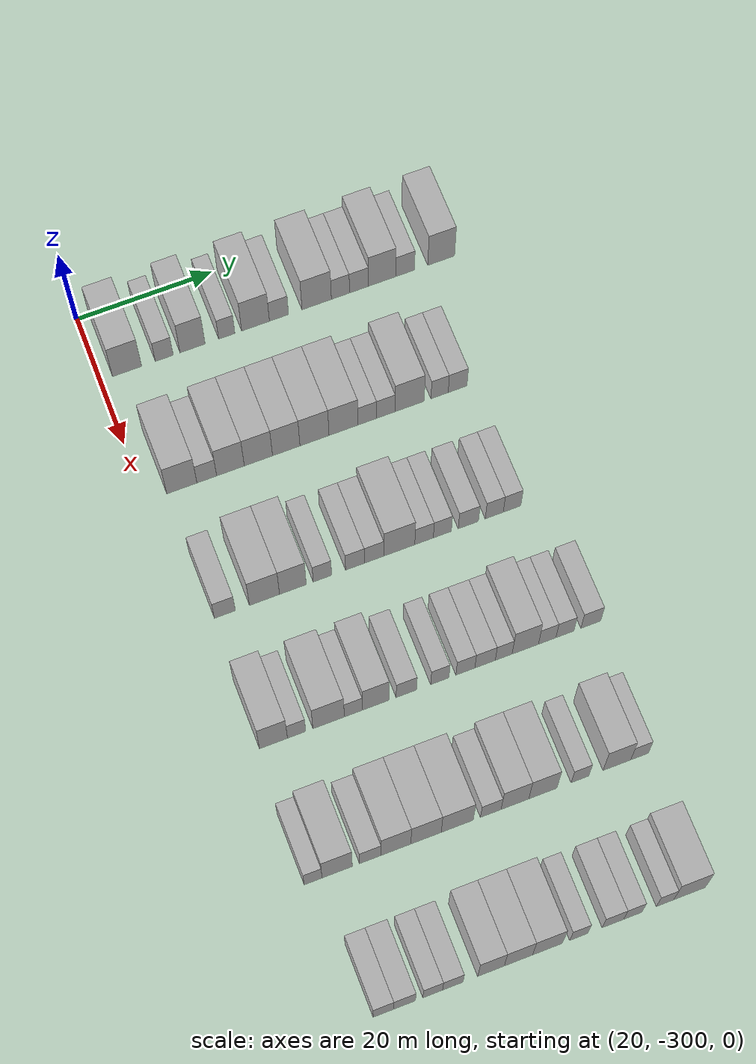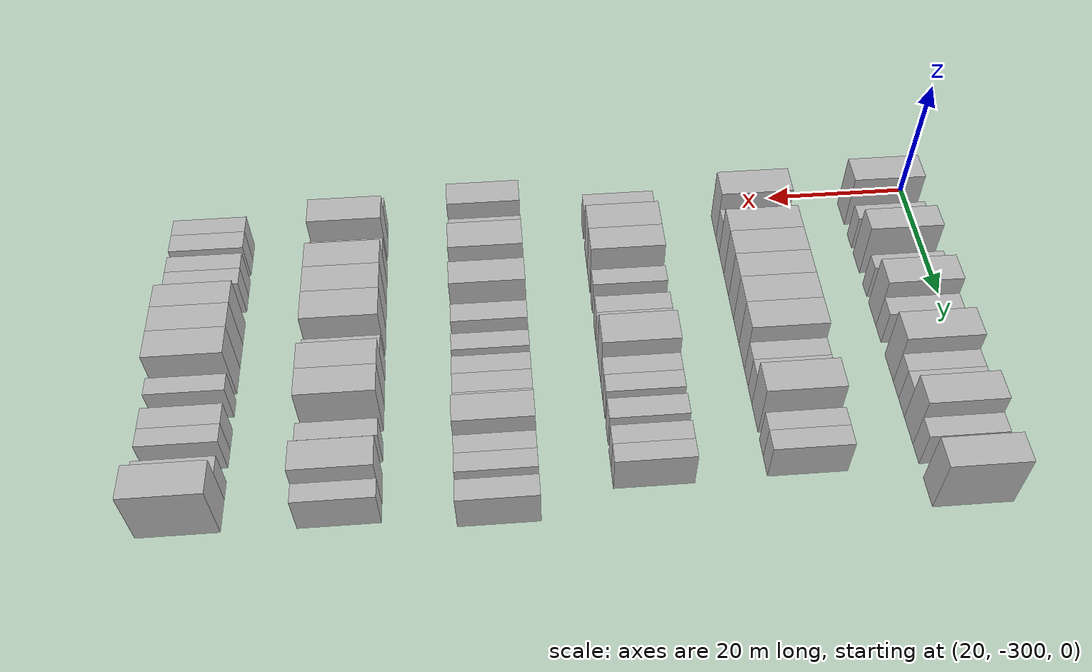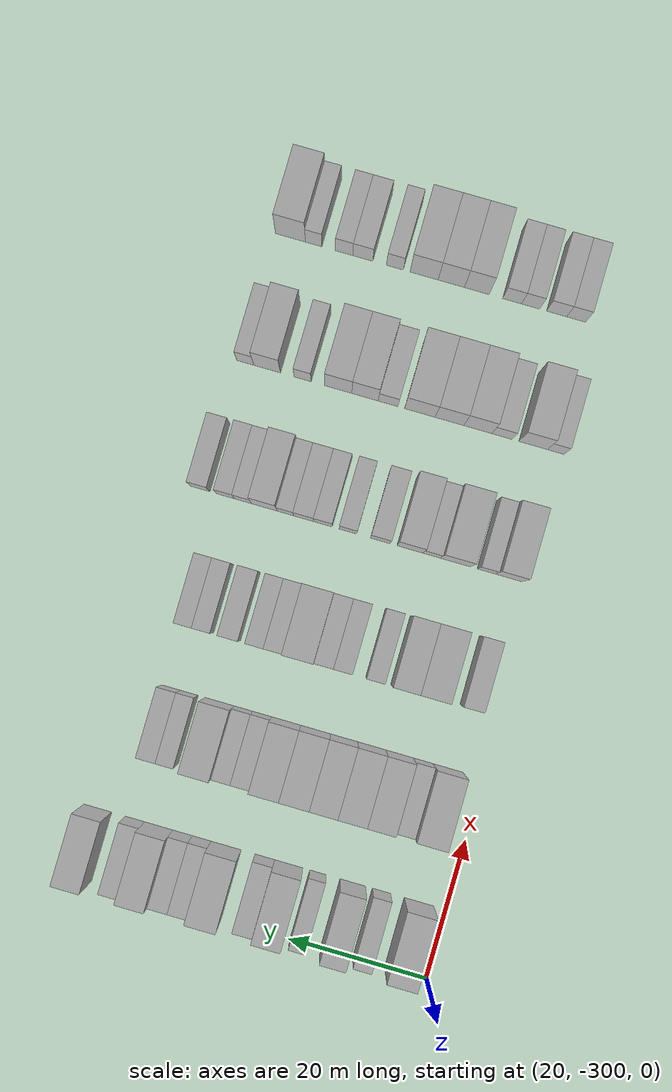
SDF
<sdf version="1.6">
 <world name="default">
  <model name="building_15">
   <static>1</static>
   <pose>25.0000 -296.0424 0 0.000000 0.000000 0.000000</pose>
   <link name="link">
    <pose>0 0 4.50 0 0 0</pose>
    <collision name="collision"><geometry><box><size>10.0000 4.2674 9.0000</size></box></geometry></collision>
    <visual name="visual">
     <cast_shadows>0</cast_shadows>
     <geometry><box><size>10.0000 4.2674 9.0000</size></box></geometry>
     <material>
      <script>
       <uri>model://HANNAS_wall/materials/scripts</uri>
       <uri>model://HANNAS_wall/materials/textures</uri>
       <name>vrc/HANNAS_wall</name>
      </script>
     </material>
    </visual>
   </link>
  </model>
  <model name="building_16">
   <static>1</static>
   <pose>25.0000 -290.5888 0 0.000000 0.000000 0.000000</pose>
   <link name="link">
    <pose>0 0 3.00 0 0 0</pose>
    <collision name="collision"><geometry><box><size>10.0000 2.6398 6.0000</size></box></geometry></collision>
    <visual name="visual">
     <cast_shadows>0</cast_shadows>
     <geometry><box><size>10.0000 2.6398 6.0000</size></box></geometry>
     <material>
      <script>
       <uri>model://HANNAS_wall/materials/scripts</uri>
       <uri>model://HANNAS_wall/materials/textures</uri>
       <name>vrc/HANNAS_wall</name>
      </script>
     </material>
    </visual>
   </link>
  </model>
  <model name="building_17">
   <static>1</static>
   <pose>25.0000 -286.4210 0 0.000000 0.000000 0.000000</pose>
   <link name="link">
    <pose>0 0 4.50 0 0 0</pose>
    <collision name="collision"><geometry><box><size>10.0000 3.6958 9.0000</size></box></geometry></collision>
    <visual name="visual">
     <cast_shadows>0</cast_shadows>
     <geometry><box><size>10.0000 3.6958 9.0000</size></box></geometry>
     <material>
      <script>
       <uri>model://HANNAS_wall/materials/scripts</uri>
       <uri>model://HANNAS_wall/materials/textures</uri>
       <name>vrc/HANNAS_wall</name>
      </script>
     </material>
    </visual>
   </link>
  </model>
  <model name="building_18">
   <static>1</static>
   <pose>25.0000 -281.3700 0 0.000000 0.000000 0.000000</pose>
   <link name="link">
    <pose>0 0 3.00 0 0 0</pose>
    <collision name="collision"><geometry><box><size>10.0000 2.4061 6.0000</size></box></geometry></collision>
    <visual name="visual">
     <cast_shadows>0</cast_shadows>
     <geometry><box><size>10.0000 2.4061 6.0000</size></box></geometry>
     <material>
      <script>
       <uri>model://HANNAS_wall/materials/scripts</uri>
       <uri>model://HANNAS_wall/materials/textures</uri>
       <name>vrc/HANNAS_wall</name>
      </script>
     </material>
    </visual>
   </link>
  </model>
  <model name="building_19">
   <static>1</static>
   <pose>25.0000 -277.1079 0 0.000000 0.000000 0.000000</pose>
   <link name="link">
    <pose>0 0 4.50 0 0 0</pose>
    <collision name="collision"><geometry><box><size>10.0000 4.1182 9.0000</size></box></geometry></collision>
    <visual name="visual">
     <cast_shadows>0</cast_shadows>
     <geometry><box><size>10.0000 4.1182 9.0000</size></box></geometry>
     <material>
      <script>
       <uri>model://HANNAS_wall/materials/scripts</uri>
       <uri>model://HANNAS_wall/materials/textures</uri>
       <name>vrc/HANNAS_wall</name>
      </script>
     </material>
    </visual>
   </link>
  </model>
  <model name="building_20">
   <static>1</static>
   <pose>25.0000 -273.6269 0 0.000000 0.000000 0.000000</pose>
   <link name="link">
    <pose>0 0 3.00 0 0 0</pose>
    <collision name="collision"><geometry><box><size>10.0000 2.8436 6.0000</size></box></geometry></collision>
    <visual name="visual">
     <cast_shadows>0</cast_shadows>
     <geometry><box><size>10.0000 2.8436 6.0000</size></box></geometry>
     <material>
      <script>
       <uri>model://HANNAS_wall/materials/scripts</uri>
       <uri>model://HANNAS_wall/materials/textures</uri>
       <name>vrc/HANNAS_wall</name>
      </script>
     </material>
    </visual>
   </link>
  </model>
  <model name="building_21">
   <static>1</static>
   <pose>25.0000 -268.0087 0 0.000000 0.000000 0.000000</pose>
   <link name="link">
    <pose>0 0 4.50 0 0 0</pose>
    <collision name="collision"><geometry><box><size>10.0000 4.3927 9.0000</size></box></geometry></collision>
    <visual name="visual">
     <cast_shadows>0</cast_shadows>
     <geometry><box><size>10.0000 4.3927 9.0000</size></box></geometry>
     <material>
      <script>
       <uri>model://HANNAS_wall/materials/scripts</uri>
       <uri>model://HANNAS_wall/materials/textures</uri>
       <name>vrc/HANNAS_wall</name>
      </script>
     </material>
    </visual>
   </link>
  </model>
  <model name="building_22">
   <static>1</static>
   <pose>25.0000 -264.4531 0 0.000000 0.000000 0.000000</pose>
   <link name="link">
    <pose>0 0 3.00 0 0 0</pose>
    <collision name="collision"><geometry><box><size>10.0000 2.7184 6.0000</size></box></geometry></collision>
    <visual name="visual">
     <cast_shadows>0</cast_shadows>
     <geometry><box><size>10.0000 2.7184 6.0000</size></box></geometry>
     <material>
      <script>
       <uri>model://HANNAS_wall/materials/scripts</uri>
       <uri>model://HANNAS_wall/materials/textures</uri>
       <name>vrc/HANNAS_wall</name>
      </script>
     </material>
    </visual>
   </link>
  </model>
  <model name="building_23">
   <static>1</static>
   <pose>25.0000 -261.6786 0 0.000000 0.000000 0.000000</pose>
   <link name="link">
    <pose>0 0 3.00 0 0 0</pose>
    <collision name="collision"><geometry><box><size>10.0000 2.8307 6.0000</size></box></geometry></collision>
    <visual name="visual">
     <cast_shadows>0</cast_shadows>
     <geometry><box><size>10.0000 2.8307 6.0000</size></box></geometry>
     <material>
      <script>
       <uri>model://HANNAS_wall/materials/scripts</uri>
       <uri>model://HANNAS_wall/materials/textures</uri>
       <name>vrc/HANNAS_wall</name>
      </script>
     </material>
    </visual>
   </link>
  </model>
  <model name="building_24">
   <static>1</static>
   <pose>25.0000 -258.2028 0 0.000000 0.000000 0.000000</pose>
   <link name="link">
    <pose>0 0 4.50 0 0 0</pose>
    <collision name="collision"><geometry><box><size>10.0000 4.1209 9.0000</size></box></geometry></collision>
    <visual name="visual">
     <cast_shadows>0</cast_shadows>
     <geometry><box><size>10.0000 4.1209 9.0000</size></box></geometry>
     <material>
      <script>
       <uri>model://HANNAS_wall/materials/scripts</uri>
       <uri>model://HANNAS_wall/materials/textures</uri>
       <name>vrc/HANNAS_wall</name>
      </script>
     </material>
    </visual>
   </link>
  </model>
  <model name="building_25">
   <static>1</static>
   <pose>25.0000 -254.7345 0 0.000000 0.000000 0.000000</pose>
   <link name="link">
    <pose>0 0 3.00 0 0 0</pose>
    <collision name="collision"><geometry><box><size>10.0000 2.8158 6.0000</size></box></geometry></collision>
    <visual name="visual">
     <cast_shadows>0</cast_shadows>
     <geometry><box><size>10.0000 2.8158 6.0000</size></box></geometry>
     <material>
      <script>
       <uri>model://HANNAS_wall/materials/scripts</uri>
       <uri>model://HANNAS_wall/materials/textures</uri>
       <name>vrc/HANNAS_wall</name>
      </script>
     </material>
    </visual>
   </link>
  </model>
  <model name="building_26">
   <static>1</static>
   <pose>25.0000 -249.3027 0 0.000000 0.000000 0.000000</pose>
   <link name="link">
    <pose>0 0 4.50 0 0 0</pose>
    <collision name="collision"><geometry><box><size>10.0000 4.0478 9.0000</size></box></geometry></collision>
    <visual name="visual">
     <cast_shadows>0</cast_shadows>
     <geometry><box><size>10.0000 4.0478 9.0000</size></box></geometry>
     <material>
      <script>
       <uri>model://HANNAS_wall/materials/scripts</uri>
       <uri>model://HANNAS_wall/materials/textures</uri>
       <name>vrc/HANNAS_wall</name>
      </script>
     </material>
    </visual>
   </link>
  </model>
  <model name="building_188">
   <static>1</static>
   <pose>44.0000 -294.8033 0 0.000000 0.000000 0.000000</pose>
   <link name="link">
    <pose>0 0 4.50 0 0 0</pose>
    <collision name="collision"><geometry><box><size>10.0000 4.3638 9.0000</size></box></geometry></collision>
    <visual name="visual">
     <cast_shadows>0</cast_shadows>
     <geometry><box><size>10.0000 4.3638 9.0000</size></box></geometry>
     <material>
      <script>
       <uri>model://HANNAS_wall/materials/scripts</uri>
       <uri>model://HANNAS_wall/materials/textures</uri>
       <name>vrc/HANNAS_wall</name>
      </script>
     </material>
    </visual>
   </link>
  </model>
  <model name="building_189">
   <static>1</static>
   <pose>44.0000 -291.1937 0 0.000000 0.000000 0.000000</pose>
   <link name="link">
    <pose>0 0 3.00 0 0 0</pose>
    <collision name="collision"><geometry><box><size>10.0000 2.8555 6.0000</size></box></geometry></collision>
    <visual name="visual">
     <cast_shadows>0</cast_shadows>
     <geometry><box><size>10.0000 2.8555 6.0000</size></box></geometry>
     <material>
      <script>
       <uri>model://HANNAS_wall/materials/scripts</uri>
       <uri>model://HANNAS_wall/materials/textures</uri>
       <name>vrc/HANNAS_wall</name>
      </script>
     </material>
    </visual>
   </link>
  </model>
  <model name="building_190">
   <static>1</static>
   <pose>44.0000 -287.7603 0 0.000000 0.000000 0.000000</pose>
   <link name="link">
    <pose>0 0 4.50 0 0 0</pose>
    <collision name="collision"><geometry><box><size>10.0000 4.0113 9.0000</size></box></geometry></collision>
    <visual name="visual">
     <cast_shadows>0</cast_shadows>
     <geometry><box><size>10.0000 4.0113 9.0000</size></box></geometry>
     <material>
      <script>
       <uri>model://HANNAS_wall/materials/scripts</uri>
       <uri>model://HANNAS_wall/materials/textures</uri>
       <name>vrc/HANNAS_wall</name>
      </script>
     </material>
    </visual>
   </link>
  </model>
  <model name="building_191">
   <static>1</static>
   <pose>44.0000 -283.7017 0 0.000000 0.000000 0.000000</pose>
   <link name="link">
    <pose>0 0 4.50 0 0 0</pose>
    <collision name="collision"><geometry><box><size>10.0000 4.1059 9.0000</size></box></geometry></collision>
    <visual name="visual">
     <cast_shadows>0</cast_shadows>
     <geometry><box><size>10.0000 4.1059 9.0000</size></box></geometry>
     <material>
      <script>
       <uri>model://HANNAS_wall/materials/scripts</uri>
       <uri>model://HANNAS_wall/materials/textures</uri>
       <name>vrc/HANNAS_wall</name>
      </script>
     </material>
    </visual>
   </link>
  </model>
  <model name="building_192">
   <static>1</static>
   <pose>44.0000 -279.6478 0 0.000000 0.000000 0.000000</pose>
   <link name="link">
    <pose>0 0 4.50 0 0 0</pose>
    <collision name="collision"><geometry><box><size>10.0000 4.0017 9.0000</size></box></geometry></collision>
    <visual name="visual">
     <cast_shadows>0</cast_shadows>
     <geometry><box><size>10.0000 4.0017 9.0000</size></box></geometry>
     <material>
      <script>
       <uri>model://HANNAS_wall/materials/scripts</uri>
       <uri>model://HANNAS_wall/materials/textures</uri>
       <name>vrc/HANNAS_wall</name>
      </script>
     </material>
    </visual>
   </link>
  </model>
  <model name="building_193">
   <static>1</static>
   <pose>44.0000 -275.5196 0 0.000000 0.000000 0.000000</pose>
   <link name="link">
    <pose>0 0 4.50 0 0 0</pose>
    <collision name="collision"><geometry><box><size>10.0000 4.2548 9.0000</size></box></geometry></collision>
    <visual name="visual">
     <cast_shadows>0</cast_shadows>
     <geometry><box><size>10.0000 4.2548 9.0000</size></box></geometry>
     <material>
      <script>
       <uri>model://HANNAS_wall/materials/scripts</uri>
       <uri>model://HANNAS_wall/materials/textures</uri>
       <name>vrc/HANNAS_wall</name>
      </script>
     </material>
    </visual>
   </link>
  </model>
  <model name="building_194">
   <static>1</static>
   <pose>44.0000 -271.2658 0 0.000000 0.000000 0.000000</pose>
   <link name="link">
    <pose>0 0 4.50 0 0 0</pose>
    <collision name="collision"><geometry><box><size>10.0000 4.2527 9.0000</size></box></geometry></collision>
    <visual name="visual">
     <cast_shadows>0</cast_shadows>
     <geometry><box><size>10.0000 4.2527 9.0000</size></box></geometry>
     <material>
      <script>
       <uri>model://HANNAS_wall/materials/scripts</uri>
       <uri>model://HANNAS_wall/materials/textures</uri>
       <name>vrc/HANNAS_wall</name>
      </script>
     </material>
    </visual>
   </link>
  </model>
  <model name="building_195">
   <static>1</static>
   <pose>44.0000 -267.7649 0 0.000000 0.000000 0.000000</pose>
   <link name="link">
    <pose>0 0 3.00 0 0 0</pose>
    <collision name="collision"><geometry><box><size>10.0000 2.7490 6.0000</size></box></geometry></collision>
    <visual name="visual">
     <cast_shadows>0</cast_shadows>
     <geometry><box><size>10.0000 2.7490 6.0000</size></box></geometry>
     <material>
      <script>
       <uri>model://HANNAS_wall/materials/scripts</uri>
       <uri>model://HANNAS_wall/materials/textures</uri>
       <name>vrc/HANNAS_wall</name>
      </script>
     </material>
    </visual>
   </link>
  </model>
  <model name="building_196">
   <static>1</static>
   <pose>44.0000 -265.0384 0 0.000000 0.000000 0.000000</pose>
   <link name="link">
    <pose>0 0 3.00 0 0 0</pose>
    <collision name="collision"><geometry><box><size>10.0000 2.7041 6.0000</size></box></geometry></collision>
    <visual name="visual">
     <cast_shadows>0</cast_shadows>
     <geometry><box><size>10.0000 2.7041 6.0000</size></box></geometry>
     <material>
      <script>
       <uri>model://HANNAS_wall/materials/scripts</uri>
       <uri>model://HANNAS_wall/materials/textures</uri>
       <name>vrc/HANNAS_wall</name>
      </script>
     </material>
    </visual>
   </link>
  </model>
  <model name="building_197">
   <static>1</static>
   <pose>44.0000 -261.5300 0 0.000000 0.000000 0.000000</pose>
   <link name="link">
    <pose>0 0 4.50 0 0 0</pose>
    <collision name="collision"><geometry><box><size>10.0000 4.3127 9.0000</size></box></geometry></collision>
    <visual name="visual">
     <cast_shadows>0</cast_shadows>
     <geometry><box><size>10.0000 4.3127 9.0000</size></box></geometry>
     <material>
      <script>
       <uri>model://HANNAS_wall/materials/scripts</uri>
       <uri>model://HANNAS_wall/materials/textures</uri>
       <name>vrc/HANNAS_wall</name>
      </script>
     </material>
    </visual>
   </link>
  </model>
  <model name="building_198">
   <static>1</static>
   <pose>44.0000 -257.0901 0 0.000000 0.000000 0.000000</pose>
   <link name="link">
    <pose>0 0 3.00 0 0 0</pose>
    <collision name="collision"><geometry><box><size>10.0000 2.5671 6.0000</size></box></geometry></collision>
    <visual name="visual">
     <cast_shadows>0</cast_shadows>
     <geometry><box><size>10.0000 2.5671 6.0000</size></box></geometry>
     <material>
      <script>
       <uri>model://HANNAS_wall/materials/scripts</uri>
       <uri>model://HANNAS_wall/materials/textures</uri>
       <name>vrc/HANNAS_wall</name>
      </script>
     </material>
    </visual>
   </link>
  </model>
  <model name="building_199">
   <static>1</static>
   <pose>44.0000 -254.4138 0 0.000000 0.000000 0.000000</pose>
   <link name="link">
    <pose>0 0 3.00 0 0 0</pose>
    <collision name="collision"><geometry><box><size>10.0000 2.7855 6.0000</size></box></geometry></collision>
    <visual name="visual">
     <cast_shadows>0</cast_shadows>
     <geometry><box><size>10.0000 2.7855 6.0000</size></box></geometry>
     <material>
      <script>
       <uri>model://HANNAS_wall/materials/scripts</uri>
       <uri>model://HANNAS_wall/materials/textures</uri>
       <name>vrc/HANNAS_wall</name>
      </script>
     </material>
    </visual>
   </link>
  </model>
  <model name="building_356">
   <static>1</static>
   <pose>63.0000 -295.5035 0 0.000000 0.000000 0.000000</pose>
   <link name="link">
    <pose>0 0 3.00 0 0 0</pose>
    <collision name="collision"><geometry><box><size>10.0000 2.9931 6.0000</size></box></geometry></collision>
    <visual name="visual">
     <cast_shadows>0</cast_shadows>
     <geometry><box><size>10.0000 2.9931 6.0000</size></box></geometry>
     <material>
      <script>
       <uri>model://HANNAS_wall/materials/scripts</uri>
       <uri>model://HANNAS_wall/materials/textures</uri>
       <name>vrc/HANNAS_wall</name>
      </script>
     </material>
    </visual>
   </link>
  </model>
  <model name="building_357">
   <static>1</static>
   <pose>63.0000 -289.8552 0 0.000000 0.000000 0.000000</pose>
   <link name="link">
    <pose>0 0 4.50 0 0 0</pose>
    <collision name="collision"><geometry><box><size>10.0000 4.3035 9.0000</size></box></geometry></collision>
    <visual name="visual">
     <cast_shadows>0</cast_shadows>
     <geometry><box><size>10.0000 4.3035 9.0000</size></box></geometry>
     <material>
      <script>
       <uri>model://HANNAS_wall/materials/scripts</uri>
       <uri>model://HANNAS_wall/materials/textures</uri>
       <name>vrc/HANNAS_wall</name>
      </script>
     </material>
    </visual>
   </link>
  </model>
  <model name="building_358">
   <static>1</static>
   <pose>63.0000 -285.7941 0 0.000000 0.000000 0.000000</pose>
   <link name="link">
    <pose>0 0 4.50 0 0 0</pose>
    <collision name="collision"><geometry><box><size>10.0000 3.8187 9.0000</size></box></geometry></collision>
    <visual name="visual">
     <cast_shadows>0</cast_shadows>
     <geometry><box><size>10.0000 3.8187 9.0000</size></box></geometry>
     <material>
      <script>
       <uri>model://HANNAS_wall/materials/scripts</uri>
       <uri>model://HANNAS_wall/materials/textures</uri>
       <name>vrc/HANNAS_wall</name>
      </script>
     </material>
    </visual>
   </link>
  </model>
  <model name="building_359">
   <static>1</static>
   <pose>63.0000 -281.5616 0 0.000000 0.000000 0.000000</pose>
   <link name="link">
    <pose>0 0 3.00 0 0 0</pose>
    <collision name="collision"><geometry><box><size>10.0000 2.6463 6.0000</size></box></geometry></collision>
    <visual name="visual">
     <cast_shadows>0</cast_shadows>
     <geometry><box><size>10.0000 2.6463 6.0000</size></box></geometry>
     <material>
      <script>
       <uri>model://HANNAS_wall/materials/scripts</uri>
       <uri>model://HANNAS_wall/materials/textures</uri>
       <name>vrc/HANNAS_wall</name>
      </script>
     </material>
    </visual>
   </link>
  </model>
  <model name="building_360">
   <static>1</static>
   <pose>63.0000 -276.8831 0 0.000000 0.000000 0.000000</pose>
   <link name="link">
    <pose>0 0 3.00 0 0 0</pose>
    <collision name="collision"><geometry><box><size>10.0000 2.7108 6.0000</size></box></geometry></collision>
    <visual name="visual">
     <cast_shadows>0</cast_shadows>
     <geometry><box><size>10.0000 2.7108 6.0000</size></box></geometry>
     <material>
      <script>
       <uri>model://HANNAS_wall/materials/scripts</uri>
       <uri>model://HANNAS_wall/materials/textures</uri>
       <name>vrc/HANNAS_wall</name>
      </script>
     </material>
    </visual>
   </link>
  </model>
  <model name="building_361">
   <static>1</static>
   <pose>63.0000 -274.1296 0 0.000000 0.000000 0.000000</pose>
   <link name="link">
    <pose>0 0 3.00 0 0 0</pose>
    <collision name="collision"><geometry><box><size>10.0000 2.7962 6.0000</size></box></geometry></collision>
    <visual name="visual">
     <cast_shadows>0</cast_shadows>
     <geometry><box><size>10.0000 2.7962 6.0000</size></box></geometry>
     <material>
      <script>
       <uri>model://HANNAS_wall/materials/scripts</uri>
       <uri>model://HANNAS_wall/materials/textures</uri>
       <name>vrc/HANNAS_wall</name>
      </script>
     </material>
    </visual>
   </link>
  </model>
  <model name="building_362">
   <static>1</static>
   <pose>63.0000 -270.4836 0 0.000000 0.000000 0.000000</pose>
   <link name="link">
    <pose>0 0 4.50 0 0 0</pose>
    <collision name="collision"><geometry><box><size>10.0000 4.4958 9.0000</size></box></geometry></collision>
    <visual name="visual">
     <cast_shadows>0</cast_shadows>
     <geometry><box><size>10.0000 4.4958 9.0000</size></box></geometry>
     <material>
      <script>
       <uri>model://HANNAS_wall/materials/scripts</uri>
       <uri>model://HANNAS_wall/materials/textures</uri>
       <name>vrc/HANNAS_wall</name>
      </script>
     </material>
    </visual>
   </link>
  </model>
  <model name="building_363">
   <static>1</static>
   <pose>63.0000 -266.8884 0 0.000000 0.000000 0.000000</pose>
   <link name="link">
    <pose>0 0 3.00 0 0 0</pose>
    <collision name="collision"><geometry><box><size>10.0000 2.6947 6.0000</size></box></geometry></collision>
    <visual name="visual">
     <cast_shadows>0</cast_shadows>
     <geometry><box><size>10.0000 2.6947 6.0000</size></box></geometry>
     <material>
      <script>
       <uri>model://HANNAS_wall/materials/scripts</uri>
       <uri>model://HANNAS_wall/materials/textures</uri>
       <name>vrc/HANNAS_wall</name>
      </script>
     </material>
    </visual>
   </link>
  </model>
  <model name="building_364">
   <static>1</static>
   <pose>63.0000 -264.2328 0 0.000000 0.000000 0.000000</pose>
   <link name="link">
    <pose>0 0 3.00 0 0 0</pose>
    <collision name="collision"><geometry><box><size>10.0000 2.6164 6.0000</size></box></geometry></collision>
    <visual name="visual">
     <cast_shadows>0</cast_shadows>
     <geometry><box><size>10.0000 2.6164 6.0000</size></box></geometry>
     <material>
      <script>
       <uri>model://HANNAS_wall/materials/scripts</uri>
       <uri>model://HANNAS_wall/materials/textures</uri>
       <name>vrc/HANNAS_wall</name>
      </script>
     </material>
    </visual>
   </link>
  </model>
  <model name="building_365">
   <static>1</static>
   <pose>63.0000 -260.4524 0 0.000000 0.000000 0.000000</pose>
   <link name="link">
    <pose>0 0 3.00 0 0 0</pose>
    <collision name="collision"><geometry><box><size>10.0000 2.9444 6.0000</size></box></geometry></collision>
    <visual name="visual">
     <cast_shadows>0</cast_shadows>
     <geometry><box><size>10.0000 2.9444 6.0000</size></box></geometry>
     <material>
      <script>
       <uri>model://HANNAS_wall/materials/scripts</uri>
       <uri>model://HANNAS_wall/materials/textures</uri>
       <name>vrc/HANNAS_wall</name>
      </script>
     </material>
    </visual>
   </link>
  </model>
  <model name="building_366">
   <static>1</static>
   <pose>63.0000 -256.6638 0 0.000000 0.000000 0.000000</pose>
   <link name="link">
    <pose>0 0 3.00 0 0 0</pose>
    <collision name="collision"><geometry><box><size>10.0000 2.6328 6.0000</size></box></geometry></collision>
    <visual name="visual">
     <cast_shadows>0</cast_shadows>
     <geometry><box><size>10.0000 2.6328 6.0000</size></box></geometry>
     <material>
      <script>
       <uri>model://HANNAS_wall/materials/scripts</uri>
       <uri>model://HANNAS_wall/materials/textures</uri>
       <name>vrc/HANNAS_wall</name>
      </script>
     </material>
    </visual>
   </link>
  </model>
  <model name="building_367">
   <static>1</static>
   <pose>63.0000 -254.0595 0 0.000000 0.000000 0.000000</pose>
   <link name="link">
    <pose>0 0 3.00 0 0 0</pose>
    <collision name="collision"><geometry><box><size>10.0000 2.5758 6.0000</size></box></geometry></collision>
    <visual name="visual">
     <cast_shadows>0</cast_shadows>
     <geometry><box><size>10.0000 2.5758 6.0000</size></box></geometry>
     <material>
      <script>
       <uri>model://HANNAS_wall/materials/scripts</uri>
       <uri>model://HANNAS_wall/materials/textures</uri>
       <name>vrc/HANNAS_wall</name>
      </script>
     </material>
    </visual>
   </link>
  </model>
  <model name="building_522">
   <static>1</static>
   <pose>82.0000 -295.6391 0 0.000000 0.000000 0.000000</pose>
   <link name="link">
    <pose>0 0 4.50 0 0 0</pose>
    <collision name="collision"><geometry><box><size>10.0000 3.9299 9.0000</size></box></geometry></collision>
    <visual name="visual">
     <cast_shadows>0</cast_shadows>
     <geometry><box><size>10.0000 3.9299 9.0000</size></box></geometry>
     <material>
      <script>
       <uri>model://HANNAS_wall/materials/scripts</uri>
       <uri>model://HANNAS_wall/materials/textures</uri>
       <name>vrc/HANNAS_wall</name>
      </script>
     </material>
    </visual>
   </link>
  </model>
  <model name="building_523">
   <static>1</static>
   <pose>82.0000 -292.3939 0 0.000000 0.000000 0.000000</pose>
   <link name="link">
    <pose>0 0 3.00 0 0 0</pose>
    <collision name="collision"><geometry><box><size>10.0000 2.5606 6.0000</size></box></geometry></collision>
    <visual name="visual">
     <cast_shadows>0</cast_shadows>
     <geometry><box><size>10.0000 2.5606 6.0000</size></box></geometry>
     <material>
      <script>
       <uri>model://HANNAS_wall/materials/scripts</uri>
       <uri>model://HANNAS_wall/materials/textures</uri>
       <name>vrc/HANNAS_wall</name>
      </script>
     </material>
    </visual>
   </link>
  </model>
  <model name="building_524">
   <static>1</static>
   <pose>82.0000 -287.8980 0 0.000000 0.000000 0.000000</pose>
   <link name="link">
    <pose>0 0 4.50 0 0 0</pose>
    <collision name="collision"><geometry><box><size>10.0000 4.4312 9.0000</size></box></geometry></collision>
    <visual name="visual">
     <cast_shadows>0</cast_shadows>
     <geometry><box><size>10.0000 4.4312 9.0000</size></box></geometry>
     <material>
      <script>
       <uri>model://HANNAS_wall/materials/scripts</uri>
       <uri>model://HANNAS_wall/materials/textures</uri>
       <name>vrc/HANNAS_wall</name>
      </script>
     </material>
    </visual>
   </link>
  </model>
  <model name="building_525">
   <static>1</static>
   <pose>82.0000 -284.4105 0 0.000000 0.000000 0.000000</pose>
   <link name="link">
    <pose>0 0 3.00 0 0 0</pose>
    <collision name="collision"><geometry><box><size>10.0000 2.5437 6.0000</size></box></geometry></collision>
    <visual name="visual">
     <cast_shadows>0</cast_shadows>
     <geometry><box><size>10.0000 2.5437 6.0000</size></box></geometry>
     <material>
      <script>
       <uri>model://HANNAS_wall/materials/scripts</uri>
       <uri>model://HANNAS_wall/materials/textures</uri>
       <name>vrc/HANNAS_wall</name>
      </script>
     </material>
    </visual>
   </link>
  </model>
  <model name="building_526">
   <static>1</static>
   <pose>82.0000 -281.2514 0 0.000000 0.000000 0.000000</pose>
   <link name="link">
    <pose>0 0 4.50 0 0 0</pose>
    <collision name="collision"><geometry><box><size>10.0000 3.7745 9.0000</size></box></geometry></collision>
    <visual name="visual">
     <cast_shadows>0</cast_shadows>
     <geometry><box><size>10.0000 3.7745 9.0000</size></box></geometry>
     <material>
      <script>
       <uri>model://HANNAS_wall/materials/scripts</uri>
       <uri>model://HANNAS_wall/materials/textures</uri>
       <name>vrc/HANNAS_wall</name>
      </script>
     </material>
    </visual>
   </link>
  </model>
  <model name="building_527">
   <static>1</static>
   <pose>82.0000 -276.9082 0 0.000000 0.000000 0.000000</pose>
   <link name="link">
    <pose>0 0 3.00 0 0 0</pose>
    <collision name="collision"><geometry><box><size>10.0000 2.9118 6.0000</size></box></geometry></collision>
    <visual name="visual">
     <cast_shadows>0</cast_shadows>
     <geometry><box><size>10.0000 2.9118 6.0000</size></box></geometry>
     <material>
      <script>
       <uri>model://HANNAS_wall/materials/scripts</uri>
       <uri>model://HANNAS_wall/materials/textures</uri>
       <name>vrc/HANNAS_wall</name>
      </script>
     </material>
    </visual>
   </link>
  </model>
  <model name="building_528">
   <static>1</static>
   <pose>82.0000 -272.1541 0 0.000000 0.000000 0.000000</pose>
   <link name="link">
    <pose>0 0 3.00 0 0 0</pose>
    <collision name="collision"><geometry><box><size>10.0000 2.5965 6.0000</size></box></geometry></collision>
    <visual name="visual">
     <cast_shadows>0</cast_shadows>
     <geometry><box><size>10.0000 2.5965 6.0000</size></box></geometry>
     <material>
      <script>
       <uri>model://HANNAS_wall/materials/scripts</uri>
       <uri>model://HANNAS_wall/materials/textures</uri>
       <name>vrc/HANNAS_wall</name>
      </script>
     </material>
    </visual>
   </link>
  </model>
  <model name="building_529">
   <static>1</static>
   <pose>82.0000 -268.5061 0 0.000000 0.000000 0.000000</pose>
   <link name="link">
    <pose>0 0 3.00 0 0 0</pose>
    <collision name="collision"><geometry><box><size>10.0000 2.6995 6.0000</size></box></geometry></collision>
    <visual name="visual">
     <cast_shadows>0</cast_shadows>
     <geometry><box><size>10.0000 2.6995 6.0000</size></box></geometry>
     <material>
      <script>
       <uri>model://HANNAS_wall/materials/scripts</uri>
       <uri>model://HANNAS_wall/materials/textures</uri>
       <name>vrc/HANNAS_wall</name>
      </script>
     </material>
    </visual>
   </link>
  </model>
  <model name="building_530">
   <static>1</static>
   <pose>82.0000 -265.6904 0 0.000000 0.000000 0.000000</pose>
   <link name="link">
    <pose>0 0 3.00 0 0 0</pose>
    <collision name="collision"><geometry><box><size>10.0000 2.9320 6.0000</size></box></geometry></collision>
    <visual name="visual">
     <cast_shadows>0</cast_shadows>
     <geometry><box><size>10.0000 2.9320 6.0000</size></box></geometry>
     <material>
      <script>
       <uri>model://HANNAS_wall/materials/scripts</uri>
       <uri>model://HANNAS_wall/materials/textures</uri>
       <name>vrc/HANNAS_wall</name>
      </script>
     </material>
    </visual>
   </link>
  </model>
  <model name="building_531">
   <static>1</static>
   <pose>82.0000 -263.0204 0 0.000000 0.000000 0.000000</pose>
   <link name="link">
    <pose>0 0 3.00 0 0 0</pose>
    <collision name="collision"><geometry><box><size>10.0000 2.4080 6.0000</size></box></geometry></collision>
    <visual name="visual">
     <cast_shadows>0</cast_shadows>
     <geometry><box><size>10.0000 2.4080 6.0000</size></box></geometry>
     <material>
      <script>
       <uri>model://HANNAS_wall/materials/scripts</uri>
       <uri>model://HANNAS_wall/materials/textures</uri>
       <name>vrc/HANNAS_wall</name>
      </script>
     </material>
    </visual>
   </link>
  </model>
  <model name="building_532">
   <static>1</static>
   <pose>82.0000 -259.9201 0 0.000000 0.000000 0.000000</pose>
   <link name="link">
    <pose>0 0 4.50 0 0 0</pose>
    <collision name="collision"><geometry><box><size>10.0000 3.7926 9.0000</size></box></geometry></collision>
    <visual name="visual">
     <cast_shadows>0</cast_shadows>
     <geometry><box><size>10.0000 3.7926 9.0000</size></box></geometry>
     <material>
      <script>
       <uri>model://HANNAS_wall/materials/scripts</uri>
       <uri>model://HANNAS_wall/materials/textures</uri>
       <name>vrc/HANNAS_wall</name>
      </script>
     </material>
    </visual>
   </link>
  </model>
  <model name="building_533">
   <static>1</static>
   <pose>82.0000 -256.7702 0 0.000000 0.000000 0.000000</pose>
   <link name="link">
    <pose>0 0 3.00 0 0 0</pose>
    <collision name="collision"><geometry><box><size>10.0000 2.5071 6.0000</size></box></geometry></collision>
    <visual name="visual">
     <cast_shadows>0</cast_shadows>
     <geometry><box><size>10.0000 2.5071 6.0000</size></box></geometry>
     <material>
      <script>
       <uri>model://HANNAS_wall/materials/scripts</uri>
       <uri>model://HANNAS_wall/materials/textures</uri>
       <name>vrc/HANNAS_wall</name>
      </script>
     </material>
    </visual>
   </link>
  </model>
  <model name="building_534">
   <static>1</static>
   <pose>82.0000 -254.2101 0 0.000000 0.000000 0.000000</pose>
   <link name="link">
    <pose>0 0 3.00 0 0 0</pose>
    <collision name="collision"><geometry><box><size>10.0000 2.6132 6.0000</size></box></geometry></collision>
    <visual name="visual">
     <cast_shadows>0</cast_shadows>
     <geometry><box><size>10.0000 2.6132 6.0000</size></box></geometry>
     <material>
      <script>
       <uri>model://HANNAS_wall/materials/scripts</uri>
       <uri>model://HANNAS_wall/materials/textures</uri>
       <name>vrc/HANNAS_wall</name>
      </script>
     </material>
    </visual>
   </link>
  </model>
  <model name="building_535">
   <static>1</static>
   <pose>82.0000 -250.4662 0 0.000000 0.000000 0.000000</pose>
   <link name="link">
    <pose>0 0 3.00 0 0 0</pose>
    <collision name="collision"><geometry><box><size>10.0000 2.8745 6.0000</size></box></geometry></collision>
    <visual name="visual">
     <cast_shadows>0</cast_shadows>
     <geometry><box><size>10.0000 2.8745 6.0000</size></box></geometry>
     <material>
      <script>
       <uri>model://HANNAS_wall/materials/scripts</uri>
       <uri>model://HANNAS_wall/materials/textures</uri>
       <name>vrc/HANNAS_wall</name>
      </script>
     </material>
    </visual>
   </link>
  </model>
  <model name="building_695">
   <static>1</static>
   <pose>101.0000 -297.2581 0 0.000000 0.000000 0.000000</pose>
   <link name="link">
    <pose>0 0 3.00 0 0 0</pose>
    <collision name="collision"><geometry><box><size>10.0000 2.4655 6.0000</size></box></geometry></collision>
    <visual name="visual">
     <cast_shadows>0</cast_shadows>
     <geometry><box><size>10.0000 2.4655 6.0000</size></box></geometry>
     <material>
      <script>
       <uri>model://HANNAS_wall/materials/scripts</uri>
       <uri>model://HANNAS_wall/materials/textures</uri>
       <name>vrc/HANNAS_wall</name>
      </script>
     </material>
    </visual>
   </link>
  </model>
  <model name="building_696">
   <static>1</static>
   <pose>101.0000 -293.9401 0 0.000000 0.000000 0.000000</pose>
   <link name="link">
    <pose>0 0 4.50 0 0 0</pose>
    <collision name="collision"><geometry><box><size>10.0000 4.1704 9.0000</size></box></geometry></collision>
    <visual name="visual">
     <cast_shadows>0</cast_shadows>
     <geometry><box><size>10.0000 4.1704 9.0000</size></box></geometry>
     <material>
      <script>
       <uri>model://HANNAS_wall/materials/scripts</uri>
       <uri>model://HANNAS_wall/materials/textures</uri>
       <name>vrc/HANNAS_wall</name>
      </script>
     </material>
    </visual>
   </link>
  </model>
  <model name="building_697">
   <static>1</static>
   <pose>101.0000 -289.3700 0 0.000000 0.000000 0.000000</pose>
   <link name="link">
    <pose>0 0 3.00 0 0 0</pose>
    <collision name="collision"><geometry><box><size>10.0000 2.9699 6.0000</size></box></geometry></collision>
    <visual name="visual">
     <cast_shadows>0</cast_shadows>
     <geometry><box><size>10.0000 2.9699 6.0000</size></box></geometry>
     <material>
      <script>
       <uri>model://HANNAS_wall/materials/scripts</uri>
       <uri>model://HANNAS_wall/materials/textures</uri>
       <name>vrc/HANNAS_wall</name>
      </script>
     </material>
    </visual>
   </link>
  </model>
  <model name="building_698">
   <static>1</static>
   <pose>101.0000 -285.8124 0 0.000000 0.000000 0.000000</pose>
   <link name="link">
    <pose>0 0 4.50 0 0 0</pose>
    <collision name="collision"><geometry><box><size>10.0000 4.1453 9.0000</size></box></geometry></collision>
    <visual name="visual">
     <cast_shadows>0</cast_shadows>
     <geometry><box><size>10.0000 4.1453 9.0000</size></box></geometry>
     <material>
      <script>
       <uri>model://HANNAS_wall/materials/scripts</uri>
       <uri>model://HANNAS_wall/materials/textures</uri>
       <name>vrc/HANNAS_wall</name>
      </script>
     </material>
    </visual>
   </link>
  </model>
  <model name="building_699">
   <static>1</static>
   <pose>101.0000 -281.6243 0 0.000000 0.000000 0.000000</pose>
   <link name="link">
    <pose>0 0 4.50 0 0 0</pose>
    <collision name="collision"><geometry><box><size>10.0000 4.2310 9.0000</size></box></geometry></collision>
    <visual name="visual">
     <cast_shadows>0</cast_shadows>
     <geometry><box><size>10.0000 4.2310 9.0000</size></box></geometry>
     <material>
      <script>
       <uri>model://HANNAS_wall/materials/scripts</uri>
       <uri>model://HANNAS_wall/materials/textures</uri>
       <name>vrc/HANNAS_wall</name>
      </script>
     </material>
    </visual>
   </link>
  </model>
  <model name="building_700">
   <static>1</static>
   <pose>101.0000 -277.2669 0 0.000000 0.000000 0.000000</pose>
   <link name="link">
    <pose>0 0 4.50 0 0 0</pose>
    <collision name="collision"><geometry><box><size>10.0000 4.4837 9.0000</size></box></geometry></collision>
    <visual name="visual">
     <cast_shadows>0</cast_shadows>
     <geometry><box><size>10.0000 4.4837 9.0000</size></box></geometry>
     <material>
      <script>
       <uri>model://HANNAS_wall/materials/scripts</uri>
       <uri>model://HANNAS_wall/materials/textures</uri>
       <name>vrc/HANNAS_wall</name>
      </script>
     </material>
    </visual>
   </link>
  </model>
  <model name="building_701">
   <static>1</static>
   <pose>101.0000 -272.5788 0 0.000000 0.000000 0.000000</pose>
   <link name="link">
    <pose>0 0 3.00 0 0 0</pose>
    <collision name="collision"><geometry><box><size>10.0000 2.8926 6.0000</size></box></geometry></collision>
    <visual name="visual">
     <cast_shadows>0</cast_shadows>
     <geometry><box><size>10.0000 2.8926 6.0000</size></box></geometry>
     <material>
      <script>
       <uri>model://HANNAS_wall/materials/scripts</uri>
       <uri>model://HANNAS_wall/materials/textures</uri>
       <name>vrc/HANNAS_wall</name>
      </script>
     </material>
    </visual>
   </link>
  </model>
  <model name="building_702">
   <static>1</static>
   <pose>101.0000 -269.1833 0 0.000000 0.000000 0.000000</pose>
   <link name="link">
    <pose>0 0 4.50 0 0 0</pose>
    <collision name="collision"><geometry><box><size>10.0000 3.8984 9.0000</size></box></geometry></collision>
    <visual name="visual">
     <cast_shadows>0</cast_shadows>
     <geometry><box><size>10.0000 3.8984 9.0000</size></box></geometry>
     <material>
      <script>
       <uri>model://HANNAS_wall/materials/scripts</uri>
       <uri>model://HANNAS_wall/materials/textures</uri>
       <name>vrc/HANNAS_wall</name>
      </script>
     </material>
    </visual>
   </link>
  </model>
  <model name="building_703">
   <static>1</static>
   <pose>101.0000 -265.2450 0 0.000000 0.000000 0.000000</pose>
   <link name="link">
    <pose>0 0 4.50 0 0 0</pose>
    <collision name="collision"><geometry><box><size>10.0000 3.9781 9.0000</size></box></geometry></collision>
    <visual name="visual">
     <cast_shadows>0</cast_shadows>
     <geometry><box><size>10.0000 3.9781 9.0000</size></box></geometry>
     <material>
      <script>
       <uri>model://HANNAS_wall/materials/scripts</uri>
       <uri>model://HANNAS_wall/materials/textures</uri>
       <name>vrc/HANNAS_wall</name>
      </script>
     </material>
    </visual>
   </link>
  </model>
  <model name="building_704">
   <static>1</static>
   <pose>101.0000 -259.9944 0 0.000000 0.000000 0.000000</pose>
   <link name="link">
    <pose>0 0 3.00 0 0 0</pose>
    <collision name="collision"><geometry><box><size>10.0000 2.5232 6.0000</size></box></geometry></collision>
    <visual name="visual">
     <cast_shadows>0</cast_shadows>
     <geometry><box><size>10.0000 2.5232 6.0000</size></box></geometry>
     <material>
      <script>
       <uri>model://HANNAS_wall/materials/scripts</uri>
       <uri>model://HANNAS_wall/materials/textures</uri>
       <name>vrc/HANNAS_wall</name>
      </script>
     </material>
    </visual>
   </link>
  </model>
  <model name="building_705">
   <static>1</static>
   <pose>101.0000 -254.7578 0 0.000000 0.000000 0.000000</pose>
   <link name="link">
    <pose>0 0 4.50 0 0 0</pose>
    <collision name="collision"><geometry><box><size>10.0000 3.9499 9.0000</size></box></geometry></collision>
    <visual name="visual">
     <cast_shadows>0</cast_shadows>
     <geometry><box><size>10.0000 3.9499 9.0000</size></box></geometry>
     <material>
      <script>
       <uri>model://HANNAS_wall/materials/scripts</uri>
       <uri>model://HANNAS_wall/materials/textures</uri>
       <name>vrc/HANNAS_wall</name>
      </script>
     </material>
    </visual>
   </link>
  </model>
  <model name="building_706">
   <static>1</static>
   <pose>101.0000 -251.5292 0 0.000000 0.000000 0.000000</pose>
   <link name="link">
    <pose>0 0 3.00 0 0 0</pose>
    <collision name="collision"><geometry><box><size>10.0000 2.5073 6.0000</size></box></geometry></collision>
    <visual name="visual">
     <cast_shadows>0</cast_shadows>
     <geometry><box><size>10.0000 2.5073 6.0000</size></box></geometry>
     <material>
      <script>
       <uri>model://HANNAS_wall/materials/scripts</uri>
       <uri>model://HANNAS_wall/materials/textures</uri>
       <name>vrc/HANNAS_wall</name>
      </script>
     </material>
    </visual>
   </link>
  </model>
  <model name="building_872">
   <static>1</static>
   <pose>120.0000 -294.9329 0 0.000000 0.000000 0.000000</pose>
   <link name="link">
    <pose>0 0 3.00 0 0 0</pose>
    <collision name="collision"><geometry><box><size>10.0000 2.7896 6.0000</size></box></geometry></collision>
    <visual name="visual">
     <cast_shadows>0</cast_shadows>
     <geometry><box><size>10.0000 2.7896 6.0000</size></box></geometry>
     <material>
      <script>
       <uri>model://HANNAS_wall/materials/scripts</uri>
       <uri>model://HANNAS_wall/materials/textures</uri>
       <name>vrc/HANNAS_wall</name>
      </script>
     </material>
    </visual>
   </link>
  </model>
  <model name="building_873">
   <static>1</static>
   <pose>120.0000 -292.0505 0 0.000000 0.000000 0.000000</pose>
   <link name="link">
    <pose>0 0 3.00 0 0 0</pose>
    <collision name="collision"><geometry><box><size>10.0000 2.9752 6.0000</size></box></geometry></collision>
    <visual name="visual">
     <cast_shadows>0</cast_shadows>
     <geometry><box><size>10.0000 2.9752 6.0000</size></box></geometry>
     <material>
      <script>
       <uri>model://HANNAS_wall/materials/scripts</uri>
       <uri>model://HANNAS_wall/materials/textures</uri>
       <name>vrc/HANNAS_wall</name>
      </script>
     </material>
    </visual>
   </link>
  </model>
  <model name="building_874">
   <static>1</static>
   <pose>120.0000 -288.2180 0 0.000000 0.000000 0.000000</pose>
   <link name="link">
    <pose>0 0 3.00 0 0 0</pose>
    <collision name="collision"><geometry><box><size>10.0000 2.6899 6.0000</size></box></geometry></collision>
    <visual name="visual">
     <cast_shadows>0</cast_shadows>
     <geometry><box><size>10.0000 2.6899 6.0000</size></box></geometry>
     <material>
      <script>
       <uri>model://HANNAS_wall/materials/scripts</uri>
       <uri>model://HANNAS_wall/materials/textures</uri>
       <name>vrc/HANNAS_wall</name>
      </script>
     </material>
    </visual>
   </link>
  </model>
  <model name="building_875">
   <static>1</static>
   <pose>120.0000 -285.4742 0 0.000000 0.000000 0.000000</pose>
   <link name="link">
    <pose>0 0 3.00 0 0 0</pose>
    <collision name="collision"><geometry><box><size>10.0000 2.7978 6.0000</size></box></geometry></collision>
    <visual name="visual">
     <cast_shadows>0</cast_shadows>
     <geometry><box><size>10.0000 2.7978 6.0000</size></box></geometry>
     <material>
      <script>
       <uri>model://HANNAS_wall/materials/scripts</uri>
       <uri>model://HANNAS_wall/materials/textures</uri>
       <name>vrc/HANNAS_wall</name>
      </script>
     </material>
    </visual>
   </link>
  </model>
  <model name="building_876">
   <static>1</static>
   <pose>120.0000 -280.2451 0 0.000000 0.000000 0.000000</pose>
   <link name="link">
    <pose>0 0 4.50 0 0 0</pose>
    <collision name="collision"><geometry><box><size>10.0000 3.6602 9.0000</size></box></geometry></collision>
    <visual name="visual">
     <cast_shadows>0</cast_shadows>
     <geometry><box><size>10.0000 3.6602 9.0000</size></box></geometry>
     <material>
      <script>
       <uri>model://HANNAS_wall/materials/scripts</uri>
       <uri>model://HANNAS_wall/materials/textures</uri>
       <name>vrc/HANNAS_wall</name>
      </script>
     </material>
    </visual>
   </link>
  </model>
  <model name="building_877">
   <static>1</static>
   <pose>120.0000 -276.4694 0 0.000000 0.000000 0.000000</pose>
   <link name="link">
    <pose>0 0 4.50 0 0 0</pose>
    <collision name="collision"><geometry><box><size>10.0000 3.8913 9.0000</size></box></geometry></collision>
    <visual name="visual">
     <cast_shadows>0</cast_shadows>
     <geometry><box><size>10.0000 3.8913 9.0000</size></box></geometry>
     <material>
      <script>
       <uri>model://HANNAS_wall/materials/scripts</uri>
       <uri>model://HANNAS_wall/materials/textures</uri>
       <name>vrc/HANNAS_wall</name>
      </script>
     </material>
    </visual>
   </link>
  </model>
  <model name="building_878">
   <static>1</static>
   <pose>120.0000 -272.4532 0 0.000000 0.000000 0.000000</pose>
   <link name="link">
    <pose>0 0 4.50 0 0 0</pose>
    <collision name="collision"><geometry><box><size>10.0000 4.1412 9.0000</size></box></geometry></collision>
    <visual name="visual">
     <cast_shadows>0</cast_shadows>
     <geometry><box><size>10.0000 4.1412 9.0000</size></box></geometry>
     <material>
      <script>
       <uri>model://HANNAS_wall/materials/scripts</uri>
       <uri>model://HANNAS_wall/materials/textures</uri>
       <name>vrc/HANNAS_wall</name>
      </script>
     </material>
    </visual>
   </link>
  </model>
  <model name="building_879">
   <static>1</static>
   <pose>120.0000 -268.1302 0 0.000000 0.000000 0.000000</pose>
   <link name="link">
    <pose>0 0 3.00 0 0 0</pose>
    <collision name="collision"><geometry><box><size>10.0000 2.5048 6.0000</size></box></geometry></collision>
    <visual name="visual">
     <cast_shadows>0</cast_shadows>
     <geometry><box><size>10.0000 2.5048 6.0000</size></box></geometry>
     <material>
      <script>
       <uri>model://HANNAS_wall/materials/scripts</uri>
       <uri>model://HANNAS_wall/materials/textures</uri>
       <name>vrc/HANNAS_wall</name>
      </script>
     </material>
    </visual>
   </link>
  </model>
  <model name="building_880">
   <static>1</static>
   <pose>120.0000 -263.3881 0 0.000000 0.000000 0.000000</pose>
   <link name="link">
    <pose>0 0 3.00 0 0 0</pose>
    <collision name="collision"><geometry><box><size>10.0000 2.9792 6.0000</size></box></geometry></collision>
    <visual name="visual">
     <cast_shadows>0</cast_shadows>
     <geometry><box><size>10.0000 2.9792 6.0000</size></box></geometry>
     <material>
      <script>
       <uri>model://HANNAS_wall/materials/scripts</uri>
       <uri>model://HANNAS_wall/materials/textures</uri>
       <name>vrc/HANNAS_wall</name>
      </script>
     </material>
    </visual>
   </link>
  </model>
  <model name="building_881">
   <static>1</static>
   <pose>120.0000 -260.6152 0 0.000000 0.000000 0.000000</pose>
   <link name="link">
    <pose>0 0 3.00 0 0 0</pose>
    <collision name="collision"><geometry><box><size>10.0000 2.5667 6.0000</size></box></geometry></collision>
    <visual name="visual">
     <cast_shadows>0</cast_shadows>
     <geometry><box><size>10.0000 2.5667 6.0000</size></box></geometry>
     <material>
      <script>
       <uri>model://HANNAS_wall/materials/scripts</uri>
       <uri>model://HANNAS_wall/materials/textures</uri>
       <name>vrc/HANNAS_wall</name>
      </script>
     </material>
    </visual>
   </link>
  </model>
  <model name="building_882">
   <static>1</static>
   <pose>120.0000 -256.1147 0 0.000000 0.000000 0.000000</pose>
   <link name="link">
    <pose>0 0 3.00 0 0 0</pose>
    <collision name="collision"><geometry><box><size>10.0000 2.4344 6.0000</size></box></geometry></collision>
    <visual name="visual">
     <cast_shadows>0</cast_shadows>
     <geometry><box><size>10.0000 2.4344 6.0000</size></box></geometry>
     <material>
      <script>
       <uri>model://HANNAS_wall/materials/scripts</uri>
       <uri>model://HANNAS_wall/materials/textures</uri>
       <name>vrc/HANNAS_wall</name>
      </script>
     </material>
    </visual>
   </link>
  </model>
  <model name="building_883">
   <static>1</static>
   <pose>120.0000 -252.6779 0 0.000000 0.000000 0.000000</pose>
   <link name="link">
    <pose>0 0 4.50 0 0 0</pose>
    <collision name="collision"><geometry><box><size>10.0000 4.4392 9.0000</size></box></geometry></collision>
    <visual name="visual">
     <cast_shadows>0</cast_shadows>
     <geometry><box><size>10.0000 4.4392 9.0000</size></box></geometry>
     <material>
      <script>
       <uri>model://HANNAS_wall/materials/scripts</uri>
       <uri>model://HANNAS_wall/materials/textures</uri>
       <name>vrc/HANNAS_wall</name>
      </script>
     </material>
    </visual>
   </link>
  </model>
 </world>
</sdf>
